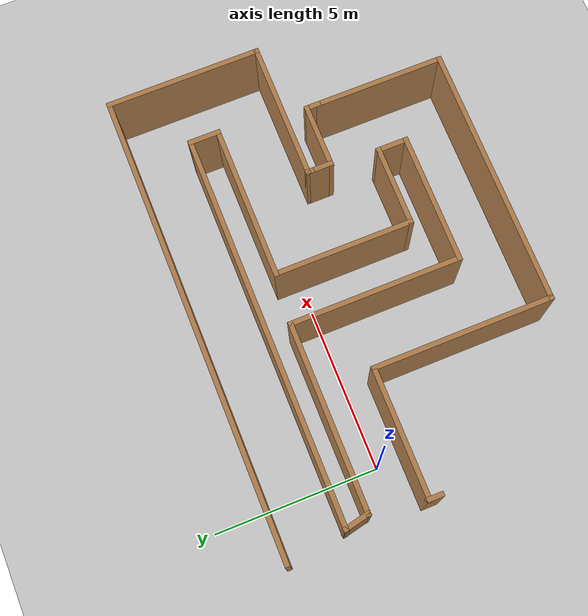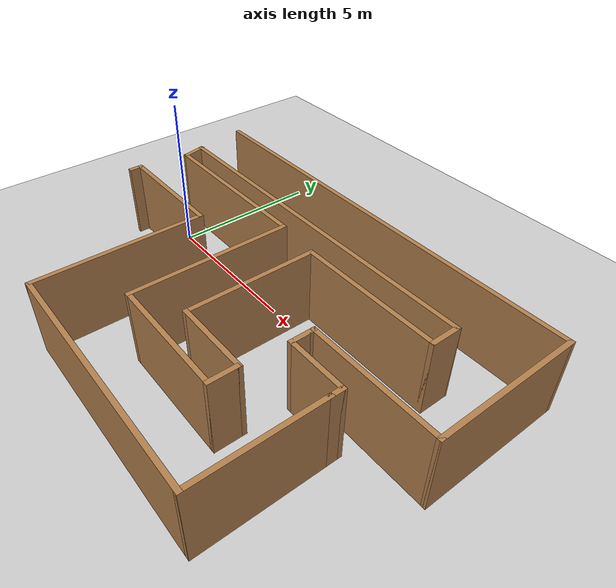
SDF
<sdf version="1.7">
 <world name="default">
  <light name="sun" type="directional">
   <pose>0 0 10 0 -0 0</pose>
   <diffuse>0.8 0.8 0.8 1</diffuse>
   <specular>0.2 0.2 0.2 1</specular>
   <attenuation>
    <range>1000</range>
    <constant>0.9</constant>
    <linear>0.01</linear>
    <quadratic>0.001</quadratic>
   </attenuation>
   <direction>-0.5 0.1 -0.9</direction>
   <spot><inner_angle>0</inner_angle><outer_angle>0</outer_angle><falloff>0</falloff></spot>
  </light>
  <model name="ground_plane">
   <static>1</static>
   <link name="link">
    <collision name="collision">
     <geometry><plane><normal>0 0 1</normal><size>100 100</size></plane></geometry>
     <surface><friction><ode><mu>100</mu><mu2>50</mu2></ode></friction></surface>
    </collision>
    <visual name="visual">
     <cast_shadows>0</cast_shadows>
     <geometry><plane><normal>0 0 1</normal><size>100 100</size></plane></geometry>
     <material>
      <script><uri>file://media/materials/scripts/gazebo.material</uri><name>Gazebo/Grey</name></script>
     </material>
    </visual>
   </link>
  </model>
  <gravity>0 0 -9.8</gravity>
  <magnetic_field>6e-06 2.3e-05 -4.2e-05</magnetic_field>
  <atmosphere type="adiabatic"/>
  <physics type="ode">
   <max_step_size>0.001</max_step_size>
   <real_time_factor>1</real_time_factor>
   <real_time_update_rate>1000</real_time_update_rate>
  </physics>
  <scene><ambient>0.4 0.4 0.4 1</ambient><background>0.7 0.7 0.7 1</background><shadows>1</shadows></scene>
  <audio><device>default</device></audio>
  <spherical_coordinates>
   <surface_model>EARTH_WGS84</surface_model>
   <latitude_deg>0</latitude_deg>
   <longitude_deg>0</longitude_deg>
   <elevation>0</elevation>
   <heading_deg>0</heading_deg>
  </spherical_coordinates>
  <light name="user_directional_light_0" type="directional">
   <pose>12.9253 -8.12721 1 0 -0 0</pose>
   <diffuse>0.5 0.5 0.5 1</diffuse>
   <specular>0.1 0.1 0.1 1</specular>
   <direction>0.1 0.1 -0.9</direction>
   <attenuation>
    <range>20</range>
    <constant>0.5</constant>
    <linear>0.01</linear>
    <quadratic>0.001</quadratic>
   </attenuation>
   <spot><inner_angle>0</inner_angle><outer_angle>0</outer_angle><falloff>0</falloff></spot>
  </light>
  <light name="user_directional_light_1" type="directional">
   <pose>9.31809 7.52809 1 0 -0 0</pose>
   <diffuse>0.5 0.5 0.5 1</diffuse>
   <specular>0.1 0.1 0.1 1</specular>
   <direction>0.1 0.1 -0.9</direction>
   <attenuation>
    <range>20</range>
    <constant>0.5</constant>
    <linear>0.01</linear>
    <quadratic>0.001</quadratic>
   </attenuation>
   <spot><inner_angle>0</inner_angle><outer_angle>0</outer_angle><falloff>0</falloff></spot>
  </light>
  <model name="world3">
   <pose>5.40784 -1.38961 0 0 -0 0</pose>
   <link name="Wall_10">
    <collision name="Wall_10_Collision">
     <geometry><box><size>5.5 0.15 2.5</size></box></geometry>
     <pose>0 0 1.25 0 -0 0</pose>
    </collision>
    <visual name="Wall_10_Visual">
     <pose>0 0 1.25 0 -0 0</pose>
     <geometry><box><size>5.5 0.15 2.5</size></box></geometry>
     <material>
      <script><uri>file://media/materials/scripts/gazebo.material</uri><name>Gazebo/Wood</name></script>
      <ambient>1 1 1 1</ambient>
     </material>
     <meta><layer>0</layer></meta>
    </visual>
    <pose>-3.05 -2.075 0 0 -0 -1.5708</pose>
   </link>
   <link name="Wall_11">
    <collision name="Wall_11_Collision">
     <geometry><box><size>8 0.15 2.5</size></box></geometry>
     <pose>0 0 1.25 0 -0 0</pose>
    </collision>
    <visual name="Wall_11_Visual">
     <pose>0 0 1.25 0 -0 0</pose>
     <geometry><box><size>8 0.15 2.5</size></box></geometry>
     <material>
      <script><uri>file://media/materials/scripts/gazebo.material</uri><name>Gazebo/Wood</name></script>
      <ambient>1 1 1 1</ambient>
     </material>
     <meta><layer>0</layer></meta>
    </visual>
    <pose>0.874999 -4.75 0 0 -0 0</pose>
   </link>
   <link name="Wall_12">
    <collision name="Wall_12_Collision">
     <geometry><box><size>4 0.15 2.5</size></box></geometry>
     <pose>0 0 1.25 0 -0 0</pose>
    </collision>
    <visual name="Wall_12_Visual">
     <pose>0 0 1.25 0 -0 0</pose>
     <geometry><box><size>4 0.15 2.5</size></box></geometry>
     <material>
      <script><uri>file://media/materials/scripts/gazebo.material</uri><name>Gazebo/Wood</name></script>
      <ambient>1 1 1 1</ambient>
     </material>
     <meta><layer>0</layer></meta>
    </visual>
    <pose>4.8 -2.825 0 0 -0 1.5708</pose>
   </link>
   <link name="Wall_13">
    <collision name="Wall_13_Collision">
     <geometry><box><size>0.5 0.15 2.5</size></box></geometry>
     <pose>0 0 1.25 0 -0 0</pose>
    </collision>
    <visual name="Wall_13_Visual">
     <pose>0 0 1.25 0 -0 0</pose>
     <geometry><box><size>0.5 0.15 2.5</size></box></geometry>
     <material>
      <script><uri>file://media/materials/scripts/gazebo.material</uri><name>Gazebo/Wood</name></script>
      <ambient>1 1 1 1</ambient>
     </material>
     <meta><layer>0</layer></meta>
    </visual>
    <pose>4.8 -0.725 0 0 -0 1.5708</pose>
   </link>
   <link name="Wall_14">
    <collision name="Wall_14_Collision">
     <geometry><box><size>2 0.15 2.5</size></box></geometry>
     <pose>0 0 1.25 0 -0 0</pose>
    </collision>
    <visual name="Wall_14_Visual">
     <pose>0 0 1.25 0 -0 0</pose>
     <geometry><box><size>2 0.15 2.5</size></box></geometry>
     <material>
      <script><uri>file://media/materials/scripts/gazebo.material</uri><name>Gazebo/Wood</name></script>
      <ambient>1 1 1 1</ambient>
     </material>
     <meta><layer>0</layer></meta>
    </visual>
    <pose>3.875 -0.55 0 0 -0 3.14159</pose>
   </link>
   <link name="Wall_15">
    <collision name="Wall_15_Collision">
     <geometry><box><size>0.75 0.15 2.5</size></box></geometry>
     <pose>0 0 1.25 0 -0 0</pose>
    </collision>
    <visual name="Wall_15_Visual">
     <pose>0 0 1.25 0 -0 0</pose>
     <geometry><box><size>0.75 0.15 2.5</size></box></geometry>
     <material>
      <script><uri>file://media/materials/scripts/gazebo.material</uri><name>Gazebo/Wood</name></script>
      <ambient>1 1 1 1</ambient>
     </material>
     <meta><layer>0</layer></meta>
    </visual>
    <pose>2.95 -0.25 0 0 -0 1.5708</pose>
   </link>
   <link name="Wall_16">
    <collision name="Wall_16_Collision">
     <geometry><box><size>0.25 0.15 2.5</size></box></geometry>
     <pose>0 0 1.25 0 -0 0</pose>
    </collision>
    <visual name="Wall_16_Visual">
     <pose>0 0 1.25 0 -0 0</pose>
     <geometry><box><size>0.25 0.15 2.5</size></box></geometry>
     <material>
      <script><uri>file://media/materials/scripts/gazebo.material</uri><name>Gazebo/Wood</name></script>
      <ambient>1 1 1 1</ambient>
     </material>
     <meta><layer>0</layer></meta>
    </visual>
    <pose>2.95 0.1 0 0 -0 1.5708</pose>
   </link>
   <link name="Wall_17">
    <collision name="Wall_17_Collision">
     <geometry><box><size>4.25 0.15 2.5</size></box></geometry>
     <pose>0 0 1.25 0 -0 0</pose>
    </collision>
    <visual name="Wall_17_Visual">
     <pose>0 0 1.25 0 -0 0</pose>
     <geometry><box><size>4.25 0.15 2.5</size></box></geometry>
     <material>
      <script><uri>file://media/materials/scripts/gazebo.material</uri><name>Gazebo/Wood</name></script>
      <ambient>1 1 1 1</ambient>
     </material>
     <meta><layer>0</layer></meta>
    </visual>
    <pose>5 0.15 0 0 -0 0</pose>
   </link>
   <link name="Wall_18">
    <collision name="Wall_18_Collision">
     <geometry><box><size>4.75 0.15 2.5</size></box></geometry>
     <pose>0 0 1.25 0 -0 0</pose>
    </collision>
    <visual name="Wall_18_Visual">
     <pose>0 0 1.25 0 -0 0</pose>
     <geometry><box><size>4.75 0.15 2.5</size></box></geometry>
     <material>
      <script><uri>file://media/materials/scripts/gazebo.material</uri><name>Gazebo/Wood</name></script>
      <ambient>1 1 1 1</ambient>
     </material>
     <meta><layer>0</layer></meta>
    </visual>
    <pose>7.05 2.45 0 0 -0 1.5708</pose>
   </link>
   <link name="Wall_19">
    <collision name="Wall_19_Collision">
     <geometry><box><size>14.25 0.15 2.5</size></box></geometry>
     <pose>0 0 1.25 0 -0 0</pose>
    </collision>
    <visual name="Wall_19_Visual">
     <pose>0 0 1.25 0 -0 0</pose>
     <geometry><box><size>14.25 0.15 2.5</size></box></geometry>
     <material>
      <script><uri>file://media/materials/scripts/gazebo.material</uri><name>Gazebo/Wood</name></script>
      <ambient>1 1 1 1</ambient>
     </material>
     <meta><layer>0</layer></meta>
    </visual>
    <pose>-1e-06 4.75 0 0 -0 3.14159</pose>
   </link>
   <link name="Wall_21">
    <collision name="Wall_21_Collision">
     <geometry><box><size>5.75 0.15 2.5</size></box></geometry>
     <pose>0 0 1.25 0 -0 0</pose>
    </collision>
    <visual name="Wall_21_Visual">
     <pose>0 0 1.25 0 -0 0</pose>
     <geometry><box><size>5.75 0.15 2.5</size></box></geometry>
     <material>
      <script><uri>file://media/materials/scripts/gazebo.material</uri><name>Gazebo/Wood</name></script>
      <ambient>1 1 1 1</ambient>
     </material>
     <meta><layer>0</layer></meta>
    </visual>
    <pose>-3.83659 2.26103 0 0 -0 0</pose>
   </link>
   <link name="Wall_22">
    <collision name="Wall_22_Collision">
     <geometry><box><size>5.25 0.15 2.5</size></box></geometry>
     <pose>0 0 1.25 0 -0 0</pose>
    </collision>
    <visual name="Wall_22_Visual">
     <pose>0 0 1.25 0 -0 0</pose>
     <geometry><box><size>5.25 0.15 2.5</size></box></geometry>
     <material>
      <script><uri>file://media/materials/scripts/gazebo.material</uri><name>Gazebo/Wood</name></script>
      <ambient>1 1 1 1</ambient>
     </material>
     <meta><layer>0</layer></meta>
    </visual>
    <pose>-1.03659 -0.288974 0 0 -0 -1.5708</pose>
   </link>
   <link name="Wall_23">
    <collision name="Wall_23_Collision">
     <geometry><box><size>4 0.15 2.5</size></box></geometry>
     <pose>0 0 1.25 0 -0 0</pose>
    </collision>
    <visual name="Wall_23_Visual">
     <pose>0 0 1.25 0 -0 0</pose>
     <geometry><box><size>4 0.15 2.5</size></box></geometry>
     <material>
      <script><uri>file://media/materials/scripts/gazebo.material</uri><name>Gazebo/Wood</name></script>
      <ambient>1 1 1 1</ambient>
     </material>
     <meta><layer>0</layer></meta>
    </visual>
    <pose>0.888407 -2.83897 0 0 -0 0</pose>
   </link>
   <link name="Wall_24">
    <collision name="Wall_24_Collision">
     <geometry><box><size>1 0.15 2.5</size></box></geometry>
     <pose>0 0 1.25 0 -0 0</pose>
    </collision>
    <visual name="Wall_24_Visual">
     <pose>0 0 1.25 0 -0 0</pose>
     <geometry><box><size>1 0.15 2.5</size></box></geometry>
     <material>
      <script><uri>file://media/materials/scripts/gazebo.material</uri><name>Gazebo/Wood</name></script>
      <ambient>1 1 1 1</ambient>
     </material>
     <meta><layer>0</layer></meta>
    </visual>
    <pose>2.81341 -2.41397 0 0 -0 1.5708</pose>
   </link>
   <link name="Wall_25">
    <collision name="Wall_25_Collision">
     <geometry><box><size>2.5 0.15 2.5</size></box></geometry>
     <pose>0 0 1.25 0 -0 0</pose>
    </collision>
    <visual name="Wall_25_Visual">
     <pose>0 0 1.25 0 -0 0</pose>
     <geometry><box><size>2.5 0.15 2.5</size></box></geometry>
     <material>
      <script><uri>file://media/materials/scripts/gazebo.material</uri><name>Gazebo/Wood</name></script>
      <ambient>1 1 1 1</ambient>
     </material>
     <meta><layer>0</layer></meta>
    </visual>
    <pose>1.63841 -1.98897 0 0 -0 3.14159</pose>
   </link>
   <link name="Wall_26">
    <collision name="Wall_26_Collision">
     <geometry><box><size>4.25 0.15 2.5</size></box></geometry>
     <pose>0 0 1.25 0 -0 0</pose>
    </collision>
    <visual name="Wall_26_Visual">
     <pose>0 0 1.25 0 -0 0</pose>
     <geometry><box><size>4.25 0.15 2.5</size></box></geometry>
     <material>
      <script><uri>file://media/materials/scripts/gazebo.material</uri><name>Gazebo/Wood</name></script>
      <ambient>1 1 1 1</ambient>
     </material>
     <meta><layer>0</layer></meta>
    </visual>
    <pose>0.463407 0.061026 0 0 -0 1.5708</pose>
   </link>
   <link name="Wall_27">
    <collision name="Wall_27_Collision">
     <geometry><box><size>4.75 0.15 2.5</size></box></geometry>
     <pose>0 0 1.25 0 -0 0</pose>
    </collision>
    <visual name="Wall_27_Visual">
     <pose>0 0 1.25 0 -0 0</pose>
     <geometry><box><size>4.75 0.15 2.5</size></box></geometry>
     <material>
      <script><uri>file://media/materials/scripts/gazebo.material</uri><name>Gazebo/Wood</name></script>
      <ambient>1 1 1 1</ambient>
     </material>
     <meta><layer>0</layer></meta>
    </visual>
    <pose>2.76341 2.11103 0 0 -0 0</pose>
   </link>
   <link name="Wall_28">
    <collision name="Wall_28_Collision">
     <geometry><box><size>1 0.15 2.5</size></box></geometry>
     <pose>0 0 1.25 0 -0 0</pose>
    </collision>
    <visual name="Wall_28_Visual">
     <pose>0 0 1.25 0 -0 0</pose>
     <geometry><box><size>1 0.15 2.5</size></box></geometry>
     <material>
      <script><uri>file://media/materials/scripts/gazebo.material</uri><name>Gazebo/Wood</name></script>
      <ambient>1 1 1 1</ambient>
     </material>
     <meta><layer>0</layer></meta>
    </visual>
    <pose>5.06341 2.53603 0 0 -0 1.5708</pose>
   </link>
   <link name="Wall_29">
    <collision name="Wall_29_Collision">
     <geometry><box><size>12 0.15 2.5</size></box></geometry>
     <pose>0 0 1.25 0 -0 0</pose>
    </collision>
    <visual name="Wall_29_Visual">
     <pose>0 0 1.25 0 -0 0</pose>
     <geometry><box><size>12 0.15 2.5</size></box></geometry>
     <material>
      <script><uri>file://media/materials/scripts/gazebo.material</uri><name>Gazebo/Wood</name></script>
      <ambient>1 1 1 1</ambient>
     </material>
     <meta><layer>0</layer></meta>
    </visual>
    <pose>-0.861593 2.96103 0 0 -0 3.14159</pose>
   </link>
   <link name="Wall_30">
    <collision name="Wall_30_Collision">
     <geometry><box><size>0.865891 0.15 2.5</size></box></geometry>
     <pose>0 0 1.25 0 -0 0</pose>
    </collision>
    <visual name="Wall_30_Visual">
     <pose>0 0 1.25 0 -0 0</pose>
     <geometry><box><size>0.865891 0.15 2.5</size></box></geometry>
     <material>
      <script><uri>file://media/materials/scripts/gazebo.material</uri><name>Gazebo/Wood</name></script>
      <ambient>1 1 1 1</ambient>
     </material>
     <meta><layer>0</layer></meta>
    </visual>
    <pose>-6.71159 2.61103 0 0 -0 -1.3597</pose>
   </link>
   <link name="Wall_8">
    <collision name="Wall_8_Collision">
     <geometry><box><size>0.5 0.15 2.5</size></box></geometry>
     <pose>0 0 1.25 0 -0 0</pose>
    </collision>
    <visual name="Wall_8_Visual">
     <pose>0 0 1.25 0 -0 0</pose>
     <geometry><box><size>0.5 0.15 2.5</size></box></geometry>
     <material>
      <script><uri>file://media/materials/scripts/gazebo.material</uri><name>Gazebo/Wood</name></script>
      <ambient>1 1 1 1</ambient>
     </material>
     <meta><layer>0</layer></meta>
    </visual>
    <pose>-6.9 0.425 0 0 -0 1.5708</pose>
   </link>
   <link name="Wall_9">
    <collision name="Wall_9_Collision">
     <geometry><box><size>4 0.15 2.5</size></box></geometry>
     <pose>0 0 1.25 0 -0 0</pose>
    </collision>
    <visual name="Wall_9_Visual">
     <pose>0 0 1.25 0 -0 0</pose>
     <geometry><box><size>4 0.15 2.5</size></box></geometry>
     <material>
      <script><uri>file://media/materials/scripts/gazebo.material</uri><name>Gazebo/Wood</name></script>
      <ambient>1 1 1 1</ambient>
     </material>
     <meta><layer>0</layer></meta>
    </visual>
    <pose>-4.975 0.6 0 0 -0 0</pose>
   </link>
   <static>1</static>
  </model>
 </world>
</sdf>
